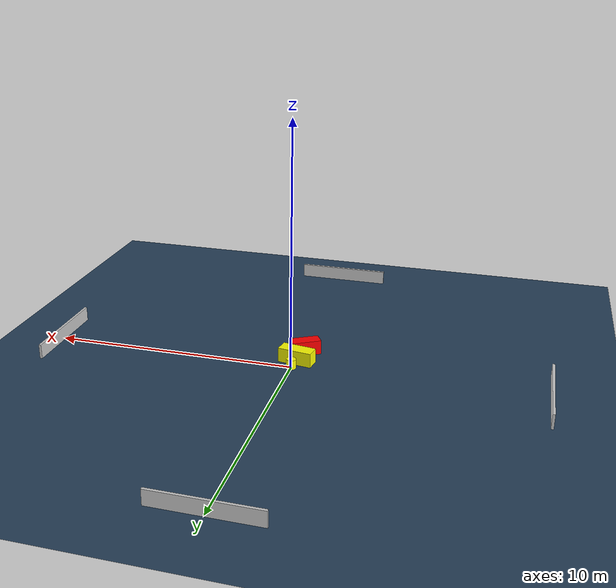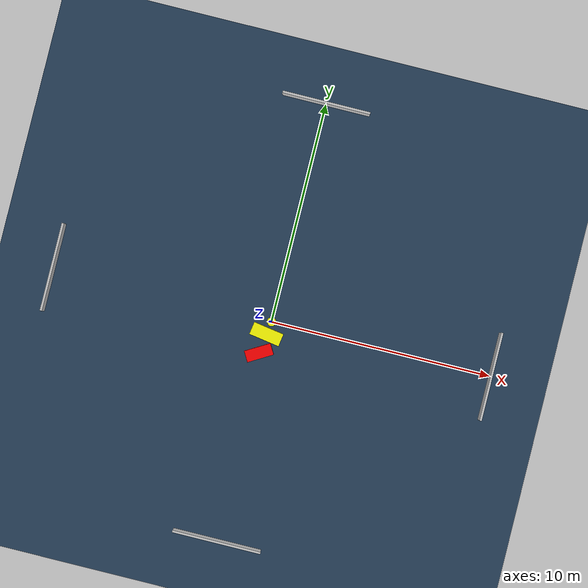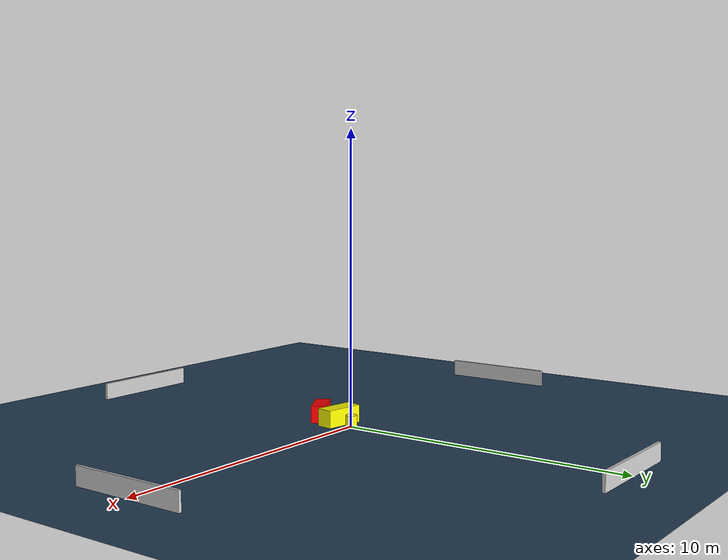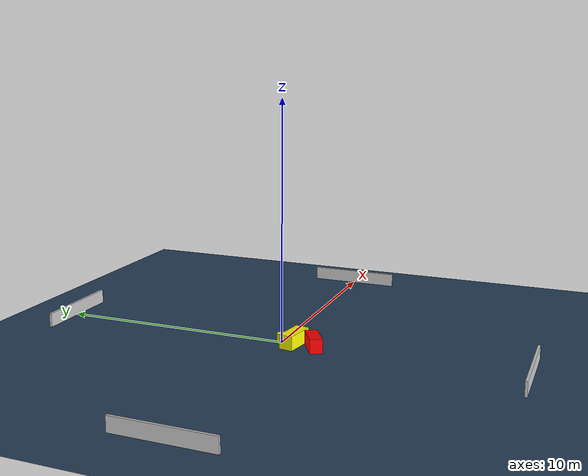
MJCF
<?xml version="1.0" ?>
<mujoco model="generated_environment">
  <option timestep="0.01" integrator="RK4" cone="elliptic"/>
  <default>
    <geom density="1"/>
  </default>
  <asset>
    <texture builtin="gradient" height="3072" name="skybox" rgb1="0.3 0.5 0.7" rgb2="0 0 0" type="skybox" width="512"/>
    <texture builtin="checker" height="300" name="groundplane" rgb1="0.2 0.3 0.4" rgb2="0.1 0.2 0.3" type="2d" width="300"/>
    <material name="groundplane" reflectance="0.2" texrepeat="5 5" texture="groundplane"/>
  </asset>
  <worldbody>
    <light dir="0 0 -1" directional="true" pos="0 0 1.5"/>
    <geom condim="3" friction="0.5 0.005 0.001" material="groundplane" name="floor" pos="0 0 0" size="0 0 0.05" type="plane"/>
    <body name="walls">
      <geom name="wall_1" condim="4" pos="-10.0 0.0 0.3" rgba="0.800000011920929 0.800000011920929 0.800000011920929 1.0" size="0.05 2.0 0.3" type="box"/>
      <geom name="wall_2" condim="4" pos="10.0 0.0 0.3" rgba="0.800000011920929 0.800000011920929 0.800000011920929 1.0" size="0.05 2.0 0.3" type="box"/>
      <geom name="wall_3" condim="4" pos="0.0 -10.0 0.3" rgba="0.800000011920929 0.800000011920929 0.800000011920929 1.0" size="2.0 0.05 0.3" type="box"/>
      <geom name="wall_4" condim="4" pos="0.0 10.0 0.3" rgba="0.800000011920929 0.800000011920929 0.800000011920929 1.0" size="2.0 0.05 0.3" type="box"/>
    </body>
    <body name="robot">
      <joint name="joint_x" type="slide" pos="0 0 0" axis="1 0 0"/>
      <joint name="joint_y" type="slide" pos="0 0 0" axis="0 1 0"/>
      <geom name="robot" type="cylinder" pos="0.0 0.0 0.2" size="0.2 0.2 0.0" mass="5.0" friction="1.0 0.005 0.0001" condim="4" rgba="1.0 1.0 0.0 1.0"/>
    </body>
    <body name="obstacle_1_movable">
      <geom name="obstacle_1_movable" condim="4" pos="-0.08657587232190278 -0.5828330863407096 0.3" euler="0 0 350.9916648475541" friction="0.0 0.005 0.001" rgba="1.0 1.0 0.0 1.0" size="0.6986211681795385 0.2884449884338019 0.3" type="box" mass="0.1"/>
      <joint type="free"/>
    </body>
    <body name="obstacle_2_static">
      <geom name="obstacle_2_static" condim="4" pos="-0.21158215747359005 -1.465479653594858 0.3" euler="0 0 120.3634365266965" friction="0.0 0.005 0.001" rgba="1.0 0.0 0.0 1.0" size="0.26059806251406353 0.6018227952756453 0.3" type="box"/>
    </body>
  </worldbody>
  <actuator>
    <motor name="actuator_x" joint="joint_x" gear="1" ctrlrange="-1 1"/>
    <motor name="actuator_y" joint="joint_y" gear="1" ctrlrange="-1 1"/>
  </actuator>
</mujoco>
